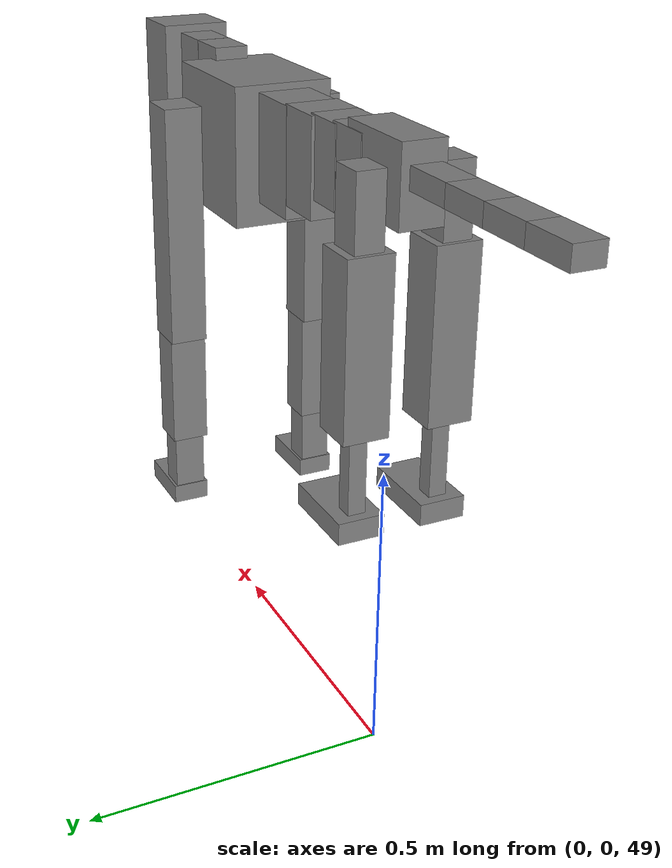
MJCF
<mujoco model="dog">

    <default>
        <joint armature="0.02" stiffness="1" damping="0.2" limited="true"/>
        <geom condim="3" friction="1 0.05 0.05" margin="0.01"/>
        <motor ctrllimited="true" ctrlrange="-1.0 1.0" forcelimited="true" gear="50"/>
    </default>

    <compiler inertiafromgeom="true" angle="radian"/>

    <option timestep="0.016" iterations="50" tolerance="1e-10" solver="Newton" jacobian="dense" cone="pyramidal"/>

    <size nconmax="20000" njmax="60000" nstack="5000000"/>
    <visual>
        <map force="0.1" zfar="30"/>
        <rgba haze="0.15 0.25 0.35 1"/>
        <quality shadowsize="2048"/>
        <global offwidth="800" offheight="800"/>
    </visual>

    <asset>
        <texture type="skybox" builtin="gradient" rgb1="0.3 0.5 0.7" rgb2="0 0 0" width="512" height="512"/>
        <texture name="texplane" type="2d" builtin="checker" rgb1=".2 .3 .4" rgb2=".1 0.15 0.2" width="512" height="512"
                 mark="cross" markrgb=".8 .8 .8"/>
        <texture name="texgeom" type="cube" builtin="flat" mark="cross" width="127" height="1278" rgb1="0.8 0.6 0.4"
                 rgb2="0.8 0.6 0.4" markrgb="1 1 1" random="0.01"/>

        <material name="matplane" reflectance="0.3" texture="texplane" texrepeat="1 1" texuniform="true"/>
        <material name="matgeom" texture="texgeom" texuniform="true" rgba="0.8 0.6 .4 1"/>
    </asset>

    <worldbody>
        <geom name="floor" pos="0 0 0" size="0 0 .25" type="plane" material="matplane" condim="3"/>

        <light directional="false" diffuse=".2 .2 .2" specular="0 0 0" pos="0 0 5" dir="0 0 -1" castshadow="false"/>
        <light mode="targetbodycom" target="torso" directional="false" diffuse=".8 .8 .8" specular="0.3 0.3 0.3"
               pos="0 0 4.0" dir="0 0 -1"/>

        <body name="root" pos="0 0 50">
            <freejoint name="root_1"/>
            <geom type="box" pos="0 0 -0.02" size="0.0774  0.0358  0.063" density="2030"/>

            <body name="spine1" pos="0.054 0 0">
                <joint name="spine1_y" axis="0 1 0" range="0 0.7" limited="true"/>
                <geom type="box" pos="0.02375 0 -0.03" size="0.04375  0.0375  0.05985" density="2030"/>

                <body name="spine2" pos="0.0612 0 0">
                    <joint name="spine2_y" axis="0 1 0" range="-0.15 0.15" limited="true"/>
                    <geom type="box" pos="0.03555  0  -0.04" size="0.04055  0.039  0.06615" density="2030"/>

                    <body name="spine3" pos="0.0730 0 0">
                        <joint name="spine3_y" axis="0 1 0" range="-0.15 0.15" limited="true"/>
                        <geom type="box" pos="0.03555  0  -0.057" size="0.04555  0.0445  0.081" density="2030"/>

                        <body name="spine4" pos="0.0780 0 0">
                            <joint name="spine4_y" axis="0 1 0" range="-0.15 0.15" limited="true"/>
                            <geom type="box" pos="0.05265  0  -0.07" size="0.05265  0.045  0.09135" density="2030"/>

                            <body name="torso" pos="0.1082 0 0">
                                <joint name="torso_y" axis="0 1 0" range="-0.15 0.15" limited="true"/>
                                <geom type="box" pos="0.11925  0  -0.085" size="0.11925  0.085  0.11745"
                                      density="2030"/>

                                <body name="neck1" pos="0.2160  0   0.0180">
                                    <joint name="neck1_y" axis="0 1 0" range="-1.2  -1" limited="true"/>
                                    <geom type="box" pos="0.0423  0  0" size="0.0423  0.03  0.036" density="2325"/>

                                    <body name="neck2" pos="0.0853  0  0">
                                        <joint name="neck2_y" axis="0 1 0" range="0.1  0" limited="true"/>
                                        <geom type="box" pos="0.0423  0  0" size="0.0423  0.03  0.036" density="2325"/>

                                        <body name="head" pos="0.0853  0  0">
                                            <joint name="head_y" axis="0 1 0" range="-0.3  -0.2" limited="true"/>
                                            <geom type="box" pos="0.0531  0  -0.055" size="0.0531  0.06  0.1044"
                                                  density="4030"/>

                                        </body>
                                    </body>
                                </body>

                                <body name="front_shoulder" pos="0.156  0   -0.0480">
                                    <joint name="front_shoulder_y" axis="0 1 0" range="-1 1.5" limited="true"/>
                                    <geom type="box" pos="0 0.13 -0.1837" size="0.0382  0.0327  0.2103" density="1158"/>
                                    <geom type="box" pos="0 -0.13 -0.1837" size="0.0382  0.0327  0.2103"
                                          density="1158"/>

                                    <body name="front_elbow" pos="0  0  -0.3673">
                                        <joint name="front_elbow_y" axis="0 1 0" range="-2 0" limited="true"/>
                                        <geom type="box" pos="0 0.13 -0.1119" size="0.0317  0.0324  0.1119"
                                              density="1081"/>
                                        <geom type="box" pos="0 -0.13 -0.1119" size="0.0317  0.0324  0.1119"
                                              density="1081"/>

                                        <body name="front_wrist" pos="0  0  -0.2238">
                                            <joint name="front_wrist_y" axis="0 1 0" range="-0.2 0" limited="true"/>
                                            <geom type="box" pos="0 0.13 -0.0564" size="0.0244  0.0271  0.0695"
                                                  density="1664"/>
                                            <geom type="box" pos="0 -0.13 -0.0564" size="0.0244  0.0271  0.0695"
                                                  density="1664"/>

                                            <body name="front_finger_end" pos="0  0  -0.1128">
                                                <joint name="front_finger_y" axis="0 1 0" range="-0.4 1"
                                                       limited="true"/>
                                                <geom type="box" pos="0.0321  0.13  -0.0020"
                                                      size="0.0588  0.0321  0.0170" density="1515"/>
                                                <geom type="box" pos="0.0321  -0.13  -0.0020"
                                                      size="0.0588  0.0321  0.0170" density="1515"/>

                                            </body>

                                        </body>
                                    </body>
                                </body>

                            </body>
                        </body>
                    </body>
                </body>
            </body>

            <body name="back_hip" pos="-0.03 0 -0.018">
                <joint name="back_hip_y" axis="0 1 0" range="-1.5 0.3" limited="true"/>
                <geom type="box" pos="0 0.07 -0.0558" size="0.0300  0.0235  0.0786" density="1154"/>
                <geom type="box" pos="0 -0.07 -0.0558" size="0.0300  0.0235  0.0786" density="1154"/>

                <body name="back_knee" pos="0  0  -0.1115">
                    <joint name="back_knee_y" axis="0 1 0" range="0 2.8" limited="true"/>
                    <geom type="box" pos="0 0.07 -0.1265" size="0.0379  0.0374  0.1421" density="1227"/>
                    <geom type="box" pos="0 -0.07 -0.1265" size="0.0379  0.0374  0.1421" density="1227"/>

                    <body name="back_ankle" pos="0  0  -0.2531">
                        <joint name="back_ankle_y" axis="0 1 0" range="-2.2 0" limited="true"/>
                        <geom type="box" pos="0 0.07 -0.0810" size="0.0147  0.0147  0.0923" density="1284"/>
                        <geom type="box" pos="0 -0.07 -0.0810" size="0.0147  0.0147  0.0923" density="1284"/>

                        <body name="back_toe_end" pos="0  0  -0.1621">
                            <joint name="back_toe_y" axis="0 1 0" range="-0.4 1" limited="true"/>
                            <geom type="box" pos="0.0381  0.07  -0.0030" size="0.0698  0.0381  0.0180" density="1515"/>
                            <geom type="box" pos="0.0381  -0.07  -0.0030" size="0.0698  0.0381  0.0180" density="1515"/>

                        </body>
                    </body>
                </body>
            </body>

            <body name="tail1" pos="-0.074 0 -0.006">
                <joint name="tail1_y" axis="0 1 0" range="-0.2 0.2" limited="true"/>
                <geom type="box" pos="-0.0536  0  0" size="0.045  0.025  0.0175" density="1587"/>

                <body name="tail2" pos="-0.09 0 0">
                    <joint name="tail2_y" axis="0 1 0" range="-0.2 0.2" limited="true"/>
                    <geom type="box" pos="-0.0536  0  0" size="0.045  0.025  0.0175" density="1587"/>

                    <body name="tail3" pos="-0.09 0 0">
                        <joint name="tail3_y" axis="0 1 0" range="-0.2 0.2" limited="true"/>
                        <geom type="box" pos="-0.0536  0  0" size="0.045  0.025  0.0175" density="1587"/>

                        <body name="tail4" pos="-0.09 0 0">
                            <joint name="tail4_y" axis="0 1 0" range="-0.2 0.2" limited="true"/>
                            <geom type="box" pos="-0.0536  0  0" size="0.045  0.025  0.0175" density="1587"/>

                        </body>
                    </body>
                </body>
            </body>
        </body>
    </worldbody>

    <actuator>
        <motor joint="spine1_y" forcerange="-150 150     "/>
        <motor joint="spine2_y" forcerange="-150 150     "/>
        <motor joint="spine3_y" forcerange="-150 150     "/>
        <motor joint="spine4_y" forcerange="-150 150     "/>
        <motor joint="torso_y" forcerange="-150 150     "/>
        <motor joint="neck1_y" forcerange="-100 100       "/>
        <motor joint="neck2_y" forcerange="-100 100       "/>
        <motor joint="head_y" forcerange="-150 150       "/>
        <motor joint="front_shoulder_y" forcerange="-129.41 188.51"/>
        <motor joint="front_elbow_y" forcerange="-139.13 196.41"/>
        <motor joint="front_wrist_y" forcerange="-82.65 134.00"/>
        <motor joint="front_finger_y" forcerange="-53.81 77.25"/>
        <motor joint="back_hip_y" forcerange="-291.49 221.88"/>
        <motor joint="back_knee_y" forcerange="-367.83 376.03"/>
        <motor joint="back_angle_y" forcerange="-84.50 50.70"/>
        <motor joint="back_toe_y" forcerange="-133.74 90.77"/>
        <motor joint="tail1_y" forcerange="-50 50     "/>
        <motor joint="tail2_y" forcerange="-50 50     "/>
        <motor joint="tail3_y" forcerange="-50 50     "/>
        <motor joint="tail4_y" forcerange="-50 50     "/>
    </actuator>
</mujoco>
